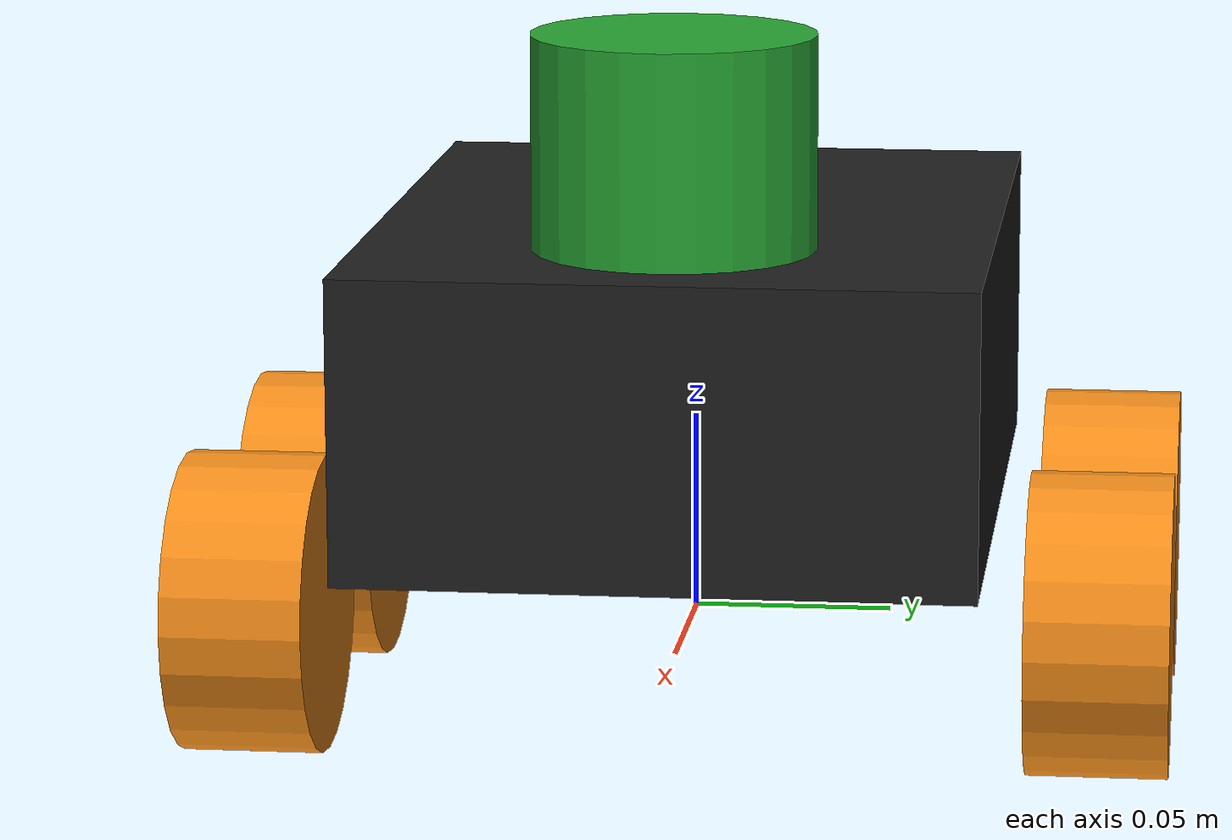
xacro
<?xml version="1.0" ?>
<robot name="oyku" xmlns:xacro="http://ros.org/wiki/xacro">

  <!-- color definitions -->
  <xacro:include filename="$(find oyku_description)/urdf/common_properties.xacro"/>

  <xacro:property name="wheel_radius" value="0.0375" />
  <xacro:property name="wheel_width" value="0.035" />
  <xacro:property name="lx" value="0.105" />
  <xacro:property name="ly" value="0.0475" />

  <link name="base_footprint"/>

  <joint name="base_joint" type="fixed">
    <parent link="base_footprint"/>
    <child link="base_link"/>
    <origin xyz="0.0 0.0 0.010" rpy="0 0 0"/>
  </joint>

  <link name="base_link">
    <visual>
      <origin xyz="0 0 0.055" rpy="0 0 0"/>
      <geometry>
        <box size="0.2 0.155 0.075"/>
      </geometry>
      <material name="black"/>
    </visual>

    <collision>
      <origin xyz="0 0 0" rpy="0 0 0"/>
      <geometry>
        <box size="0.2 0.155 0.075"/>
      </geometry>
    </collision>

    <inertial>
      <origin xyz="0 0 0" rpy="0 0 0"/>
      <mass value="8.2573504e-01"/>
      <inertia ixx="2.2124416e-03" ixy="-1.2294101e-05" ixz="3.4938785e-05"
               iyy="2.1193702e-03" iyz="-5.0120904e-06"
               izz="2.0064271e-03" />
    </inertial>
  </link>

  <xacro:macro name="oyku_wheel" params="wheel_name x y">
    <link name="${wheel_name}">
      <visual>
        <origin xyz="0 0 0" rpy="0 0 0"/>
        <geometry>
          <cylinder length="${wheel_width}" radius="${wheel_radius}"/>
        </geometry>
        <material name="orange"/>
      </visual>

      <collision>
        <origin xyz="0 0 0" rpy="0 0 0"/>
        <geometry>
          <cylinder length="${wheel_width}" radius="${wheel_radius}"/>
        </geometry>
      </collision>

      <inertial>
        <origin xyz="0 0 0" />
        <mass value="2.8498940e-02" />
        <inertia ixx="1.1175580e-05" ixy="-4.2369783e-11" ixz="-5.9381719e-09"
                iyy="1.1192413e-05" iyz="-1.4400107e-11"
                izz="2.0712558e-05" />
      </inertial>
    </link>

    <joint name="base_link_to_${wheel_name}" type="continuous">
      <parent link="base_link"/>
      <child link="${wheel_name}"/>
      <origin xyz="${x} ${y} 0" rpy="0 1.57 1.57"/>
      <axis xyz="0 0 1"/>
    </joint>
  </xacro:macro>

  <xacro:oyku_wheel wheel_name="wheel_fl" x="${ly}" y="${lx}" />
  <xacro:oyku_wheel wheel_name="wheel_fr" x="${ly}" y="${-lx}" />
  <xacro:oyku_wheel wheel_name="wheel_rl" x="${-ly}" y="${lx}" />
  <xacro:oyku_wheel wheel_name="wheel_rr" x="${-ly}" y="${-lx}" />

  <link name="lidar">
    <visual>
      <origin xyz="0 0 -0.02" rpy="0 0 0"/>
      <geometry>
        <cylinder length="0.055" radius="0.035"/>
      </geometry>
      <material name="green"/>
    </visual>

    <collision>
      <origin xyz="0 0 0" rpy="0 0 0"/>
      <geometry>
        <cylinder length="0.055" radius="0.035"/>
      </geometry>
    </collision>

    <inertial>
      <mass value="0.114" />
      <origin xyz="0 0 0" />
      <inertia ixx="0.001" ixy="0.0" ixz="0.0"
               iyy="0.001" iyz="0.0"
               izz="0.001" />
    </inertial>
  </link>

  <joint name="scan_joint" type="fixed">
    <parent link="base_link"/>
    <child link="lidar"/>
    <origin xyz="0.05 0 0.1375" rpy="0 0 0"/>
  </joint>

</robot>
